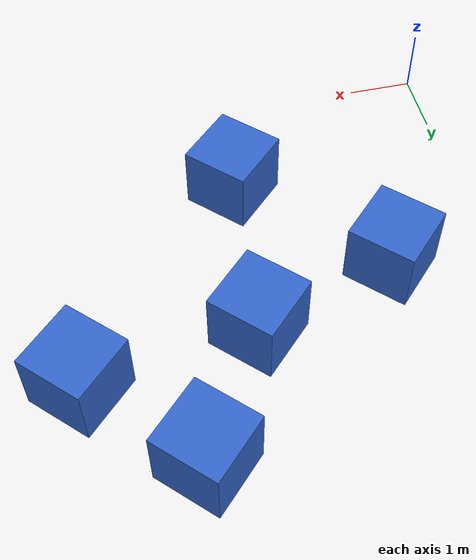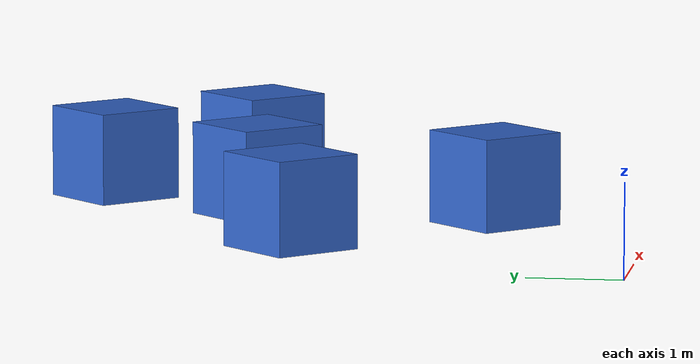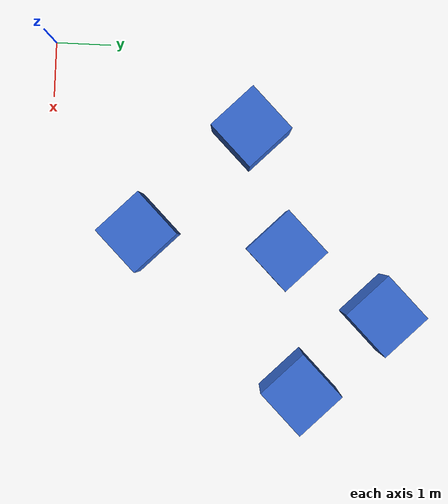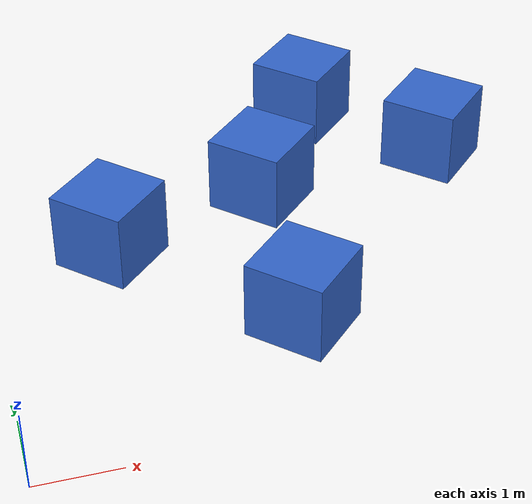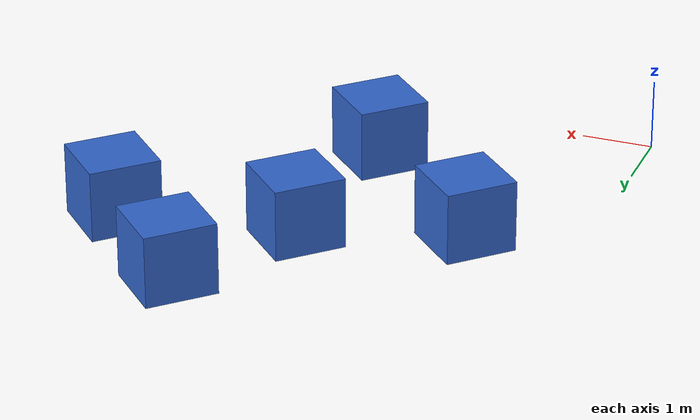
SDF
<?xml version='1.0' encoding='utf-8'?>
<sdf version="1.6">
  <model name="obstacles_medium">
    <static>true</static>
    <pose>4 4 0.5 0 0 0.785</pose>

    <link name="center_block">
      <pose>0 0.5 0 0 0 0</pose>
      <collision name="cc"><geometry><box><size>1 1 1</size></box></geometry></collision>
      <visual name="vc"><geometry><box><size>1 1 1</size></box></geometry>
        <material><ambient>0.2 0.4 0.8 1</ambient><diffuse>0.2 0.4 0.8 1</diffuse></material>
      </visual>
    </link>

    <link name="side_1">
      <pose>-2.0 1.5 0 0 0 0</pose>
      <collision name="c1"><geometry><box><size>1 1 1</size></box></geometry></collision>
      <visual name="v1"><geometry><box><size>1 1 1</size></box></geometry><material><ambient>0.2 0.4 0.8 1</ambient></material></visual>
    </link>

    <link name="side_2">
      <pose>-2.0 -1.2 0 0 0 0</pose>
      <collision name="c2"><geometry><box><size>1 1 1</size></box></geometry></collision>
      <visual name="v2"><geometry><box><size>1 1 1</size></box></geometry><material><ambient>0.2 0.4 0.8 1</ambient></material></visual>
    </link>

    <link name="side_3">
      <pose>2.0 1 0 0 0 0</pose>
      <collision name="c3"><geometry><box><size>1 1 1</size></box></geometry></collision>
      <visual name="v3"><geometry><box><size>1 1 1</size></box></geometry><material><ambient>0.2 0.4 0.8 1</ambient></material></visual>
    </link>

    <link name="side_4">
      <pose>2.0 -1 0 0 0 0</pose>
      <collision name="c4"><geometry><box><size>1 1 1</size></box></geometry></collision>
      <visual name="v4"><geometry><box><size>1 1 1</size></box></geometry><material><ambient>0.2 0.4 0.8 1</ambient></material></visual>
    </link>
  </model>
</sdf>
